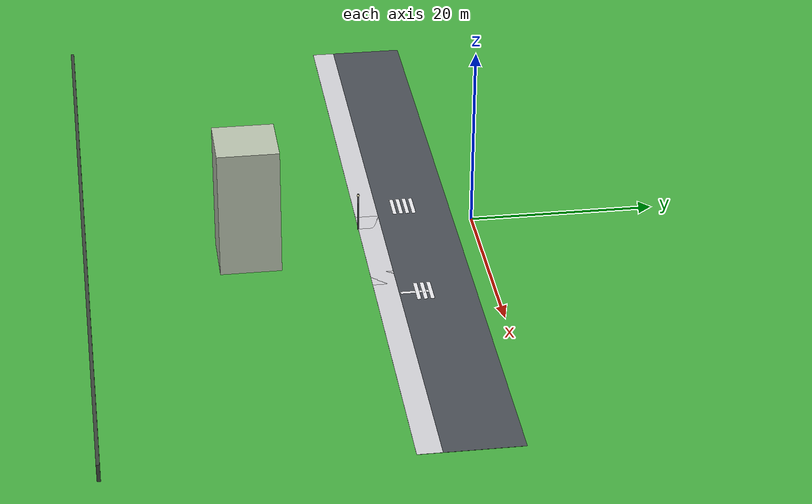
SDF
<sdf version="1.9">
 <world name="city_second">
  <model name="ground_plane">
   <static>true</static>
   <link name="link">
    <collision name="collision">
     <geometry><plane><normal>0 0 1</normal><size>300 300</size></plane></geometry>
    </collision>
    <visual name="visual">
     <geometry><plane><normal>0 0 1</normal><size>300 300</size></plane></geometry>
     <material>
      <ambient>0.28 0.69 0.26 1</ambient>
      <diffuse>0.28 0.69 0.26 1</diffuse>
      <specular>0.03 0.03 0.03 1</specular>
     </material>
    </visual>
   </link>
  </model>
  <model name="road_h_1">
   <static>true</static>
   <pose>0 -6.0 0.01 0 0 0.0</pose>
   <link name="link">
    <collision name="collision"><geometry><box><size>84 8.0 0.02</size></box></geometry></collision>
    <visual name="visual">
     <geometry><box><size>84 8.0 0.02</size></box></geometry>
     <material>
      <ambient>0.29 0.31 0.34 1</ambient>
      <diffuse>0.29 0.31 0.34 1</diffuse>
      <specular>0.03 0.03 0.03 1</specular>
     </material>
    </visual>
   </link>
  </model>
  <model name="sidewalk_h_1_south">
   <static>true</static>
   <pose>0 -11.25 0.015 0 0 0.0</pose>
   <link name="link">
    <collision name="collision"><geometry><box><size>84 2.5 0.02</size></box></geometry></collision>
    <visual name="visual">
     <geometry><box><size>84 2.5 0.02</size></box></geometry>
     <material>
      <ambient>0.83 0.83 0.85 1</ambient>
      <diffuse>0.83 0.83 0.85 1</diffuse>
      <specular>0.03 0.03 0.03 1</specular>
     </material>
    </visual>
   </link>
  </model>
  <model name="corner_sidewalk_1_1_3">
   <static>true</static>
   <pose>-0.75 -11.25 0.015 0 0 0.0</pose>
   <link name="link">
    <collision name="collision"><geometry><box><size>2.5 2.5 0.02</size></box></geometry></collision>
    <visual name="visual">
     <geometry><box><size>2.5 2.5 0.02</size></box></geometry>
     <material>
      <ambient>0.83 0.83 0.85 1</ambient>
      <diffuse>0.83 0.83 0.85 1</diffuse>
      <specular>0.03 0.03 0.03 1</specular>
     </material>
    </visual>
   </link>
  </model>
  <model name="corner_sidewalk_2_1_1">
   <static>true</static>
   <pose>10.75 -11.25 0.015 0 0 0.0</pose>
   <link name="link">
    <collision name="collision"><geometry><box><size>2.5 2.5 0.02</size></box></geometry></collision>
    <visual name="visual">
     <geometry><box><size>2.5 2.5 0.02</size></box></geometry>
     <material>
      <ambient>0.83 0.83 0.85 1</ambient>
      <diffuse>0.83 0.83 0.85 1</diffuse>
      <specular>0.03 0.03 0.03 1</specular>
     </material>
    </visual>
   </link>
  </model>
  <model name="crosswalk_v_1_1_east_1">
   <static>true</static>
   <pose>-3.75 -8.1 0.017 0 0 0.0</pose>
   <link name="link">
    <collision name="collision"><geometry><box><size>3.2 0.42 0.01</size></box></geometry></collision>
    <visual name="visual">
     <geometry><box><size>3.2 0.42 0.01</size></box></geometry>
     <material>
      <ambient>0.92 0.92 0.93 1</ambient>
      <diffuse>0.92 0.92 0.93 1</diffuse>
      <specular>0.03 0.03 0.03 1</specular>
     </material>
    </visual>
   </link>
  </model>
  <model name="crosswalk_v_1_1_east_2">
   <static>true</static>
   <pose>-3.75 -7.3999999999999995 0.017 0 0 0.0</pose>
   <link name="link">
    <collision name="collision"><geometry><box><size>3.2 0.42 0.01</size></box></geometry></collision>
    <visual name="visual">
     <geometry><box><size>3.2 0.42 0.01</size></box></geometry>
     <material>
      <ambient>0.92 0.92 0.93 1</ambient>
      <diffuse>0.92 0.92 0.93 1</diffuse>
      <specular>0.03 0.03 0.03 1</specular>
     </material>
    </visual>
   </link>
  </model>
  <model name="crosswalk_v_1_1_east_3">
   <static>true</static>
   <pose>-3.75 -6.699999999999999 0.017 0 0 0.0</pose>
   <link name="link">
    <collision name="collision"><geometry><box><size>3.2 0.42 0.01</size></box></geometry></collision>
    <visual name="visual">
     <geometry><box><size>3.2 0.42 0.01</size></box></geometry>
     <material>
      <ambient>0.92 0.92 0.93 1</ambient>
      <diffuse>0.92 0.92 0.93 1</diffuse>
      <specular>0.03 0.03 0.03 1</specular>
     </material>
    </visual>
   </link>
  </model>
  <model name="crosswalk_v_1_1_east_4">
   <static>true</static>
   <pose>-3.75 -6.0 0.017 0 0 0.0</pose>
   <link name="link">
    <collision name="collision"><geometry><box><size>3.2 0.42 0.01</size></box></geometry></collision>
    <visual name="visual">
     <geometry><box><size>3.2 0.42 0.01</size></box></geometry>
     <material>
      <ambient>0.92 0.92 0.93 1</ambient>
      <diffuse>0.92 0.92 0.93 1</diffuse>
      <specular>0.03 0.03 0.03 1</specular>
     </material>
    </visual>
   </link>
  </model>
  <model name="crosswalk_h_2_1_south_1">
   <static>true</static>
   <pose>13.9 -8.25 0.017 0 0 0.0</pose>
   <link name="link">
    <collision name="collision"><geometry><box><size>0.42 3.2 0.01</size></box></geometry></collision>
    <visual name="visual">
     <geometry><box><size>0.42 3.2 0.01</size></box></geometry>
     <material>
      <ambient>0.92 0.92 0.93 1</ambient>
      <diffuse>0.92 0.92 0.93 1</diffuse>
      <specular>0.03 0.03 0.03 1</specular>
     </material>
    </visual>
   </link>
  </model>
  <model name="crosswalk_v_2_1_west_1">
   <static>true</static>
   <pose>13.75 -8.1 0.017 0 0 0.0</pose>
   <link name="link">
    <collision name="collision"><geometry><box><size>3.2 0.42 0.01</size></box></geometry></collision>
    <visual name="visual">
     <geometry><box><size>3.2 0.42 0.01</size></box></geometry>
     <material>
      <ambient>0.92 0.92 0.93 1</ambient>
      <diffuse>0.92 0.92 0.93 1</diffuse>
      <specular>0.03 0.03 0.03 1</specular>
     </material>
    </visual>
   </link>
  </model>
  <model name="crosswalk_v_2_1_west_2">
   <static>true</static>
   <pose>13.75 -7.3999999999999995 0.017 0 0 0.0</pose>
   <link name="link">
    <collision name="collision"><geometry><box><size>3.2 0.42 0.01</size></box></geometry></collision>
    <visual name="visual">
     <geometry><box><size>3.2 0.42 0.01</size></box></geometry>
     <material>
      <ambient>0.92 0.92 0.93 1</ambient>
      <diffuse>0.92 0.92 0.93 1</diffuse>
      <specular>0.03 0.03 0.03 1</specular>
     </material>
    </visual>
   </link>
  </model>
  <model name="crosswalk_v_2_1_west_3">
   <static>true</static>
   <pose>13.75 -6.699999999999999 0.017 0 0 0.0</pose>
   <link name="link">
    <collision name="collision"><geometry><box><size>3.2 0.42 0.01</size></box></geometry></collision>
    <visual name="visual">
     <geometry><box><size>3.2 0.42 0.01</size></box></geometry>
     <material>
      <ambient>0.92 0.92 0.93 1</ambient>
      <diffuse>0.92 0.92 0.93 1</diffuse>
      <specular>0.03 0.03 0.03 1</specular>
     </material>
    </visual>
   </link>
  </model>
  <model name="house_1_2">
   <static>true</static>
   <pose>4.6 -24.8 7.0 0 0 0.0</pose>
   <link name="link">
    <collision name="collision"><geometry><box><size>6.5 6.5 14</size></box></geometry></collision>
    <visual name="visual">
     <geometry><box><size>6.5 6.5 14</size></box></geometry>
     <material>
      <ambient>0.73 0.77 0.69 1</ambient>
      <diffuse>0.73 0.77 0.69 1</diffuse>
      <specular>0.03 0.03 0.03 1</specular>
     </material>
    </visual>
   </link>
  </model>
  <model name="lamp_5">
   <static>true</static>
   <pose>0.5 -12.5 2.2 0 0 0</pose>
   <link name="link">
    <collision name="collision">
     <geometry><cylinder><radius>0.08</radius><length>4.4</length></cylinder></geometry>
    </collision>
    <visual name="pole">
     <geometry><cylinder><radius>0.08</radius><length>4.4</length></cylinder></geometry>
     <material>
      <ambient>0.35 0.36 0.38 1</ambient>
      <diffuse>0.35 0.36 0.38 1</diffuse>
      <specular>0.03 0.03 0.03 1</specular>
     </material>
    </visual>
    <visual name="lamp_head">
     <pose>0 0 2.0 0 0 0</pose>
     <geometry><sphere><radius>0.14</radius></sphere></geometry>
     <material>
      <ambient>0.96 0.94 0.78 1</ambient>
      <diffuse>0.96 0.94 0.78 1</diffuse>
      <specular>0.03 0.03 0.03 1</specular>
     </material>
    </visual>
   </link>
  </model>
  <model name="fence_south">
   <static>true</static>
   <pose>0 -42.0 0.95 0 0 0.0</pose>
   <link name="link">
    <collision name="collision"><geometry><box><size>84.5 0.35 1.9</size></box></geometry></collision>
    <visual name="visual">
     <geometry><box><size>84.5 0.35 1.9</size></box></geometry>
     <material>
      <ambient>0.23 0.27 0.23 1</ambient>
      <diffuse>0.23 0.27 0.23 1</diffuse>
      <specular>0.03 0.03 0.03 1</specular>
     </material>
    </visual>
   </link>
  </model>
 </world>
</sdf>
